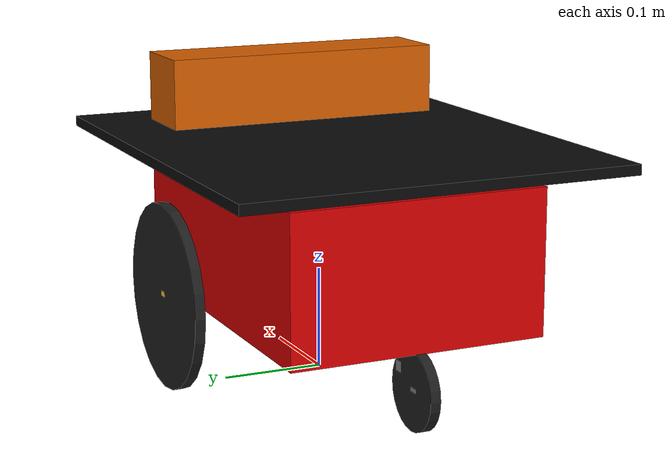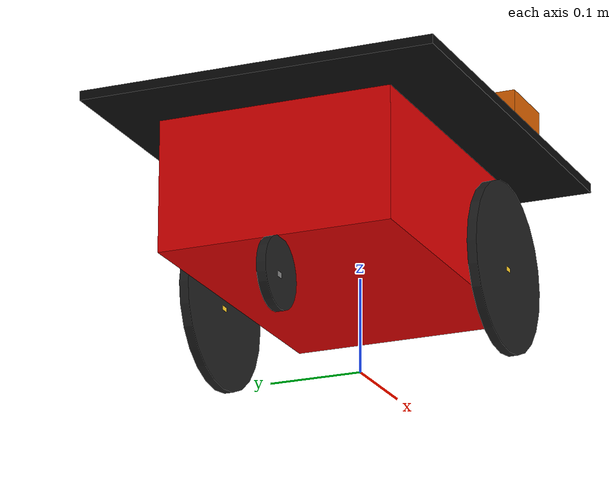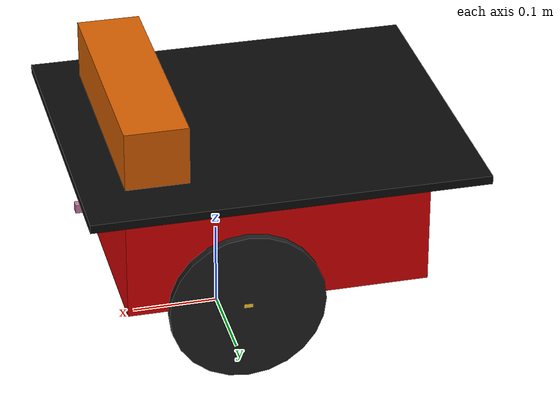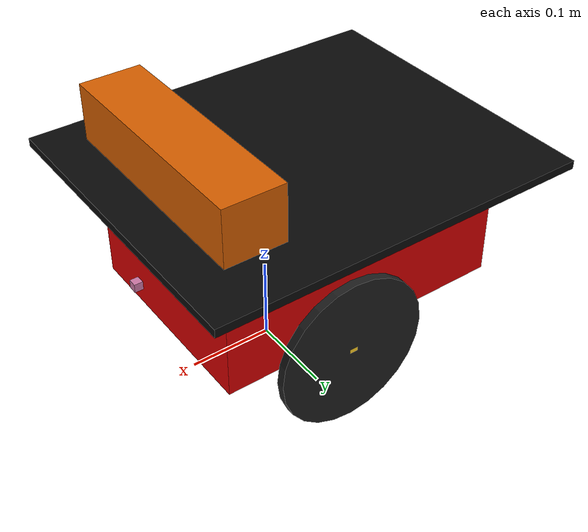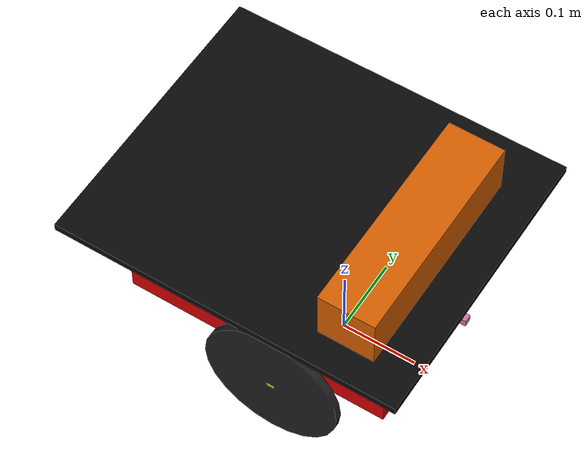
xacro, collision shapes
<?xml version="1.0"?>
<robot name="pioneer3dx" xmlns:xacro="http://ros.org/wiki/xacro">

  <!-- properties (constants) -->
  <property name="ns" value="p3dx" />
  <!-- properties (constants) -->
  <property name="M_PI" value="3.14159" />

        <!-- chassis -->
	<link name="base_link">
		<inertial>
			<mass value="3.5" />
			<origin xyz="-0.05 0 0" />
			<inertia ixx="1" ixy="0" ixz="0" iyy="1" iyz="0" izz="1" />
		</inertial>

		<visual>
			<origin xyz="-0.045 0 0.148" rpy="0 0 0" />
			<geometry name="pioneer_geom">
				<mesh filename="package://p3dx_description/meshes/chassis.stl" />
			</geometry>
			<material name="Red">
				<color rgba="0.851 0.0 0.0 1.0" />
			</material>
		</visual>

		<collision>
			<origin xyz="-0.045 0 0.145" rpy="0 0 0" />
			<geometry>
				<box size="0.35 0.25 0.14" />
			</geometry>
		</collision>
	</link>
	<gazebo reference="base_link">
		<material>Gazebo/Red</material>
	</gazebo>

 <!-- top_plate -->
	<link name="top_plate">
		<inertial>
			<mass value="0.01" />
			<origin xyz="0 0 0" />
			<inertia ixx="1" ixy="0" ixz="0" iyy="1" iyz="0" izz="1" />
		</inertial>

		<visual>
			<origin xyz="0 0 0" rpy="0 0 0" />
			<geometry name="top_geom">
				<mesh filename="package://p3dx_description/meshes/top.stl" />
			</geometry>

			<material name="Black">
				<color rgba="0.038 0.038 0.038 1.0" />
			</material>
		</visual>

		<collision>
			<origin xyz="0.0 0 0" rpy="0 0 0" />
			<geometry name="pioneer_geom">
				<box size="0.45 0.38 0.01" />
			</geometry>
		</collision>
	</link>

	<joint name="base_top_joint" type="fixed">
		<origin xyz="-0.045 0 0.234" rpy="0 0 0" />
		<parent link="base_link" />
		<child link="top_plate" />
	</joint>
  <gazebo reference="top_plate">
    <material>Gazebo/Black</material>
  </gazebo>

 <!-- swivel -->
	<link name="swivel">
		<inertial>
			<mass value="0.1" />
			<origin xyz="0 0 0" />
			<inertia ixx="0.01" ixy="0" ixz="0" iyy="0.01" iyz="0" izz="0.01" />
		</inertial>

		<visual>
			<origin xyz="0 0 0" rpy="0 0 0" />
			<geometry name="pioneer_geom">
				<mesh filename="package://p3dx_description/meshes/swivel.stl" />
			</geometry>
			<material name="black">
				<color rgba="0.5 0.5 0.5 1" />
			</material>
		</visual>

		<collision>
			<origin xyz="0 0 0" rpy="0 0 0" />
			<geometry>
				<box size="0.01 0.01 0.01" />
			</geometry>
		</collision>
	</link>

	<joint name="base_swivel_joint" type="continuous">
		<origin xyz="-0.185 0 0.055" rpy="0 0 0" />
		<axis xyz="0 0 1" />
		<anchor xyz="0 0 0" />
		<limit effort="100" velocity="100" k_velocity="0" />
		<joint_properties damping="0.0" friction="0.0" />
		<parent link="base_link" />
		<child link="swivel" />
	</joint>
  <gazebo reference="swivel">
    <material>Gazebo/Grey</material>
  </gazebo>

<!-- center_hubcap -->
	<link name="center_hubcap">
		<inertial>
			<mass value="0.01" />
			<origin xyz="0 0 0" />
			<inertia ixx="0.012411765597" ixy="-0.000711733678" ixz="0.00050272983"
				iyy="0.015218160428" iyz="-0.000004273467" izz="0.011763977943" />
		</inertial>

		<visual>
			<origin xyz="0 0 0" rpy="0 0 0" />
			<geometry name="pioneer_geom">
				<mesh filename="package://p3dx_description/meshes/center_hubcap.stl" />
			</geometry>
			<material name="black">
				<color rgba="0.5 0.5 0.5 1" />
			</material>
		</visual>

		<collision>
			<origin xyz="0 0 0" rpy="0 0 0" />
			<geometry>
				<box size="0.01 0.01 0.01" />
			</geometry>
		</collision>
	</link>

	<joint name="swivel_hubcap_joint" type="continuous">
		<origin xyz="-0.026 0 -0.016" rpy="0 0 0" />
		<axis xyz="0 1 0" />
		<anchor xyz="0 0 0" />
		<limit effort="100" velocity="100" k_velocity="0" />
		<joint_properties damping="0.0" friction="0.0" />
		<parent link="swivel" />
		<child link="center_wheel" />
	</joint>
	<gazebo reference="center_hubcap">
		<material>Gazebo/Grey</material>
	</gazebo>

<!-- center_wheel -->
	<link name="center_wheel">
		<inertial>
			<mass value="0.1" />
			<origin xyz="0 0 0" />
			<inertia ixx="0.012411765597" ixy="-0.000711733678" ixz="0.00050272983"
				iyy="0.015218160428" iyz="-0.000004273467" izz="0.011763977943" />
		</inertial>

		<visual>
			<origin xyz="0 0 0" rpy="0 0 0" />
			<geometry name="pioneer_geom">
				<mesh filename="package://p3dx_description/meshes/center_wheel.stl" />
			</geometry>
			<material name="Black">
				<color rgba="0.117 0.117 0.117 1" />
			</material>
		</visual>

		<collision>
			<origin xyz="0 0 0" rpy="-1.57 0 0" />
			<geometry>
				<cylinder radius="0.0375" length="0.01" />
			</geometry>
		</collision>
	</link>

	<joint name="center_wheel_joint" type="fixed">
		<origin xyz="-0.0035 0 -0.001" rpy="0 0 0"/>
		<parent link="center_wheel"/>
		<child link="center_hubcap"/>
	</joint>
	<gazebo reference="center_wheel">
		<material>Gazebo/Black</material>
		<mu1>10.0</mu1>
		<mu2>10.0</mu2>
		<kp>1000000.0</kp>
		<kd>1.0</kd>
	</gazebo>

<!-- front_sonar -->
	<link name="front_sonar">
		<inertial>
			<mass value="0.0001" />
			<origin xyz="0 0 0" />
			<inertia ixx="1" ixy="0" ixz="0" iyy="1" iyz="0" izz="1" />
		</inertial>

		<visual>
			<origin rpy="0 0 0" xyz="0 0 0" />
			<geometry name="pioneer_geom">
				<mesh filename="package://p3dx_description/meshes/front_sonar.stl" />
			</geometry>
			<material name="Yellow">
				<color rgba="0.715 0.583 0.210 1.0" />
			</material>
		</visual>

		<collision>
			<origin rpy="0 0 0" xyz="0 0 0" />
			<geometry>
				<box size="0.01 0.01 0.01" />
			</geometry>
		</collision>
	</link>

	<joint name="base_front_joint" type="fixed">
		<origin rpy="0 0 0" xyz="0.109 0 0.209" />
		<parent link="base_link" />
		<child link="front_sonar" />
	</joint>
  <gazebo reference="front_sonar">
    <material>Gazebo/Yellow </material>
  </gazebo>

<!-- lms100 laser -->
	<link name="lms100">
		<inertial>
			<mass value="1e-5" />
			<origin xyz="0 0 0" rpy="0 0 0" />
			<inertia ixx="1e-6" ixy="0" ixz="0" iyy="1e-6" iyz="0" izz="1e-6" />
		</inertial>

		<visual>
			<origin xyz="0 0 0" rpy="0 0 0" />
			<geometry>
				<mesh filename="package://p3dx_description/meshes/lms100.dae" />
			</geometry>
		</visual>

		<collision>
			<origin xyz="0 0 0" rpy="0 0 0" />
			<geometry>
				<box size="0.01 0.01 0.01" />
			</geometry>
		</collision>
	</link>

	<joint name="lms100_joint" type="fixed">
		<axis xyz="0 1 0" />
		<origin xyz="0.16 0 0.15" rpy="0 0 0" />
		<parent link="base_link" />
		<child link="lms100" />
	</joint>
	<gazebo reference="lms100">
		<sensor type="ray" name="head_hokuyo_sensor">
			<pose>0 0 0 0 0 0</pose>
			<visualize>false</visualize>
			<update_rate>50</update_rate>
			<ray>
				<scan>
					<horizontal>
						<samples>360</samples>
						<resolution>1</resolution>
						<min_angle>-1.570796</min_angle>
						<max_angle>1.570796</max_angle>
					</horizontal>
				</scan>
				<range>
					<min>0.10</min>
					<max>30.0</max>
					<resolution>0.01</resolution>
				</range>
				<noise>
					<type>gaussian</type>
					<mean>0.0</mean>
					<stddev>0.01</stddev>
				</noise>
			</ray>
			<plugin name="gazebo_ros_head_hokuyo_controller" filename="libgazebo_ros_laser.so">
				<topicName>p3dx/laser/scan</topicName>
				<frameName>lms100</frameName>
			</plugin>
		</sensor>
	</gazebo>

<!-- wheel -->
		<link name="p3dx_right_wheel">
			<inertial>
				<mass value="0.5" />
				<origin xyz="0 0 0" />
				<inertia ixx="0.012411765597" ixy="0" ixz="0" iyy="0.015218160428"
					iyz="0" izz="0.011763977943" />
			</inertial>

			<visual>
				<origin xyz="0 0 0" rpy="0 0 0" />
				<geometry name="pioneer_geom">
					<mesh filename="package://p3dx_description/meshes/right_wheel.stl" />
				</geometry>
				<material name="Black">
					<color rgba="0.117 0.117 0.117 1" />
				</material>
			</visual>

			<collision>
				<origin xyz="0 0 0" rpy="-1.57 0 0" />
				<geometry>
					<cylinder radius="0.09" length="0.01" />
				</geometry>
			</collision>
		</link>

		<joint name="base_right_wheel_joint" type="continuous">
			<axis xyz="0 1 0" />
			<anchor xyz="0 0 0" />
			<limit effort="100" velocity="100" />
			<joint_properties damping="0.0" friction="0.0" />
			<origin xyz="0 -0.158 0.091" rpy="0 0 0" />
			<parent link="base_link" />
			<child link="p3dx_right_wheel" />
		</joint>

		<!-- hubcap -->
		<link name="p3dx_right_hubcap">
			<inertial>
				<mass value="0.01" />
				<origin xyz="0 0 0" />
				<inertia ixx="0.012411765597" ixy="0" ixz="0" iyy="0.015218160428"
					iyz="0" izz="0.011763977943" />
			</inertial>

			<visual>
				<origin xyz="0 0 0" rpy="0 0 0" />
				<geometry name="pioneer_geom">
					<mesh filename="package://p3dx_description/meshes/right_hubcap.stl" />
				</geometry>

				<material name="Yellow">
					<color rgba="1.0 0.811 0.151 1.0" />
				</material>
			</visual>

			<collision>
				<origin xyz="0 0 0" rpy="0 0 0" />
				<geometry>
					<box size="0.01 0.01 0.01" />
				</geometry>
			</collision>
		</link>
		<joint name="base_right_hubcap_joint" type="fixed">
			<origin xyz="0 0 0" rpy="0 0 0" />
			<parent link="p3dx_right_wheel" />
			<child link="p3dx_right_hubcap" />
		</joint>

	    <transmission name="base_link_right_wheel_trans">
	      <type>pr2_mechanism_model/SimpleTransmission</type>
	      <joint name="base_right_wheel_joint" />
	      <actuator name="base_right_wheel_motor">
		<hardwareInterface>EffortJointInterface</hardwareInterface>
		<mechanicalReduction>${-1 * 624/35 * 80/19}</mechanicalReduction>
	      </actuator>
	    </transmission>

			<gazebo reference="p3dx_right_hubcap">
				<material>Gazebo/Yellow</material>
			</gazebo>

			<gazebo reference="p3dx_right_wheel">
				<material>Gazebo/Black</material>
				<mu1>0.5</mu1>
				<mu2>50.0</mu2>
				<kp>100000000.0</kp>
				<kd>1.0</kd>
			</gazebo>

	<!-- left hubcap + wheel -->

		<!-- wheel -->
		<link name="p3dx_left_wheel">
			<inertial>
				<mass value="0.5" />
				<origin xyz="0 0 0" />
				<inertia ixx="0.012411765597" ixy="0" ixz="0" iyy="0.015218160428"
					iyz="0" izz="0.011763977943" />
			</inertial>

			<visual>
				<origin xyz="0 0 0" rpy="0 0 0" />
				<geometry name="pioneer_geom">
					<mesh filename="package://p3dx_description/meshes/left_wheel.stl" />
				</geometry>
				<material name="Black">
					<color rgba="0.117 0.117 0.117 1" />
				</material>
			</visual>

			<collision>
				<origin xyz="0 0 0" rpy="-1.57 0 0" />
				<geometry>
					<cylinder radius="0.09" length="0.01" />
				</geometry>
			</collision>
		</link>

		<joint name="base_left_wheel_joint" type="continuous">
			<axis xyz="0 1 0" />
			<anchor xyz="0 0 0" />
			<limit effort="100" velocity="100" />
			<joint_properties damping="0.0" friction="0.0" />
			<origin xyz="0 0.158 0.091" rpy="0 0 0" />
			<parent link="base_link" />
			<child link="p3dx_left_wheel" />
		</joint>

		<!-- hubcap -->
		<link name="p3dx_left_hubcap">
			<inertial>
				<mass value="0.01" />
				<origin xyz="0 0 0" />
				<inertia ixx="0.012411765597" ixy="0" ixz="0" iyy="0.015218160428"
					iyz="0" izz="0.011763977943" />
			</inertial>

			<visual>
				<origin xyz="0 0 0" rpy="0 0 0" />
				<geometry name="pioneer_geom">
					<mesh filename="package://p3dx_description/meshes/left_hubcap.stl" />
				</geometry>

				<material name="Yellow">
					<color rgba="1.0 0.811 0.151 1.0" />
				</material>
			</visual>

			<collision>
				<origin xyz="0 0 0" rpy="0 0 0" />
				<geometry>
					<box size="0.01 0.01 0.01" />
				</geometry>
			</collision>
		</link>
		<joint name="base_left_hubcap_joint" type="fixed">
			<origin xyz="0 0 0" rpy="0 0 0" />
			<parent link="p3dx_left_wheel" />
			<child link="p3dx_left_hubcap" />
		</joint>

	    <transmission name="base_link_left_wheel_trans">
	      <type>pr2_mechanism_model/SimpleTransmission</type>
	      <joint name="base_left_wheel_joint" />
	      <actuator name="base_left_wheel_motor">
		<hardwareInterface>EffortJointInterface</hardwareInterface>
		<mechanicalReduction>${1 * 624/35 * 80/19}</mechanicalReduction>
	      </actuator>
	    </transmission>

			<gazebo reference="p3dx_left_hubcap">
				<material>Gazebo/Yellow</material>
			</gazebo>

			<gazebo reference="p3dx_left_wheel">
				<material>Gazebo/Black</material>
				<mu1>0.5</mu1>
				<mu2>50.0</mu2>
				<kp>100000000.0</kp>
				<kd>1.0</kd>
			</gazebo>

 <joint name="camera_rgb_joint" type="fixed">
      <origin xyz="-0.087 -0.0125 0.2870" rpy="0 0 0"/>
      <parent link="base_link"/>
      <child link="camera_rgb_frame" />
    </joint>
    <link name="camera_rgb_frame"/>

    <joint name="camera_rgb_optical_joint" type="fixed">
      <origin xyz="0 0 0" rpy="-1.57 0 -1.57" />
      <parent link="camera_rgb_frame" />
      <child link="camera_rgb_optical_frame" />
    </joint>
    <link name="camera_rgb_optical_frame"/>

    <joint name="camera_joint" type="fixed">
      <origin xyz="0.18 -0.0 -0.016" rpy="0 0 3.14"/>
      <parent link="camera_rgb_frame"/>
      <child link="camera_link"/>
    </joint>
      <link name="camera_link">
      <visual>
       <origin xyz="0 0 0" rpy="0 0 -1.57"/>
        <geometry>
         <mesh filename="package://turtlebot_description/meshes/sensors/kinect.dae"/>
        </geometry>
      </visual>
  	  <collision>
        <origin xyz="0.0 0.0 0.0" rpy="0 0 0"/>
  	    <geometry>
  	      <box size="0.07271 0.27794 0.073"/>
  	    </geometry>
  	  </collision>
      <inertial>
        <mass value="0.564" />
        <origin xyz="0 0 0" />
        <inertia ixx="0.003881243" ixy="0.0" ixz="0.0"
                 iyy="0.000498940" iyz="0.0"
                 izz="0.003879257" />
      </inertial>
    </link>

	<joint name="camera_depth_joint" type="fixed">
	  <origin xyz="0 0.025 0" rpy="0 0 0" />
	  <parent link="camera_rgb_frame" />
	  <child link="camera_depth_frame" />
	</joint>
	<link name="camera_depth_frame"/>

	<joint name="camera_depth_optical_joint" type="fixed">
	  <origin xyz="0 0 0" rpy="-1.57 0 -1.57" />
	  <parent link="camera_depth_frame" />
	  <child link="camera_depth_optical_frame" />
	</joint>
	<link name="camera_depth_optical_frame"/>

	<!-- Kinect sensor for simulation -->
	<gazebo reference="camera_link">
        <sensor type="depth" name="camera">
        <always_on>true</always_on>
        <update_rate>20.0</update_rate>
        <camera>
          <horizontal_fov value="1.046666667" />
          <image>
            <format>B8G8R8</format>
            <width>640</width>
            <height>480</height>
          </image>
          <clip>
            <near>0.05</near>
            <far>8.0</far>
          </clip>
        </camera>
        <plugin name="kinect_camera_controller" filename="libgazebo_ros_openni_kinect.so">
          <cameraName>camera</cameraName>
          <alwaysOn>true</alwaysOn>
          <updateRate>10</updateRate>
          <imageTopicName>rgb/image_raw</imageTopicName>
          <depthImageTopicName>depth/image_raw</depthImageTopicName>
          <pointCloudTopicName>depth/points</pointCloudTopicName>
          <cameraInfoTopicName>rgb/camera_info</cameraInfoTopicName>
          <depthImageCameraInfoTopicName>depth/camera_info</depthImageCameraInfoTopicName>
          <frameName>camera_depth_optical_frame</frameName>
          <baseline>0.1</baseline>
          <distortion_k1>0.0</distortion_k1>
          <distortion_k2>0.0</distortion_k2>
          <distortion_k3>0.0</distortion_k3>
          <distortion_t1>0.0</distortion_t1>
          <distortion_t2>0.0</distortion_t2>
          <pointCloudCutoff>0.4</pointCloudCutoff>
        </plugin>
      </sensor>
    </gazebo>
  <!-- ros_control plugin -->
  <gazebo>
    <plugin name="gazebo_ros_control" filename="libgazebo_ros_control.so">
      <robotNamespace>/${ns}</robotNamespace>
    </plugin>
  </gazebo>

<!-- differential drive -->
	<gazebo>
        <plugin name="differential_drive_controller" filename="libgazebo_ros_diff_drive.so">
            <rosDebugLevel>Debug</rosDebugLevel>
            <robotNamespace></robotNamespace>
            <publishWheelTF>false</publishWheelTF>
            <publishWheelJointState>true</publishWheelJointState>
            <alwaysOn>true</alwaysOn>
            <leftJoint>left_hub_joint</leftJoint>
            <rightJoint>right_hub_joint</rightJoint>
            <wheelSeparation>0.3</wheelSeparation>
            <wheelDiameter>0.18</wheelDiameter>
            <wheelTorque>20</wheelTorque>
            <wheelAcceleration>1.8</wheelAcceleration>
            <commandTopic>cmd_vel</commandTopic>
            <odometryTopic>odom</odometryTopic>
            <odometryFrame>odom</odometryFrame>
            <odometrySource>world</odometrySource>
            <robotBaseFrame>base_link</robotBaseFrame>
            <updateRate>10.0</updateRate>
	    <legacyMode>true</legacyMode>
        </plugin>

	</gazebo>

  <!-- ground truth -->
	<gazebo>
		<plugin name="p3d_base_controller" filename="libgazebo_ros_p3d.so">
			<alwaysOn>true</alwaysOn>
			<updateRate>100.0</updateRate>
			<bodyName>base_link</bodyName>
			<topicName>${ns}/base_pose_ground_truth</topicName>
			<gaussianNoise>0.01</gaussianNoise>
			<frameName>map</frameName>
			<!-- initialize odometry for fake localization -->
			<xyzOffsets>0 0 0</xyzOffsets>
			<rpyOffsets>0 0 0</rpyOffsets>
		</plugin>
	</gazebo>

</robot>
